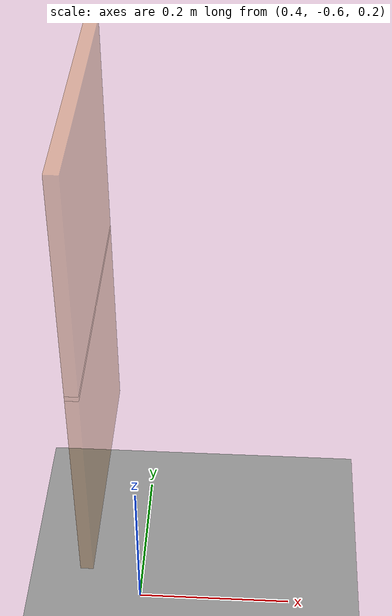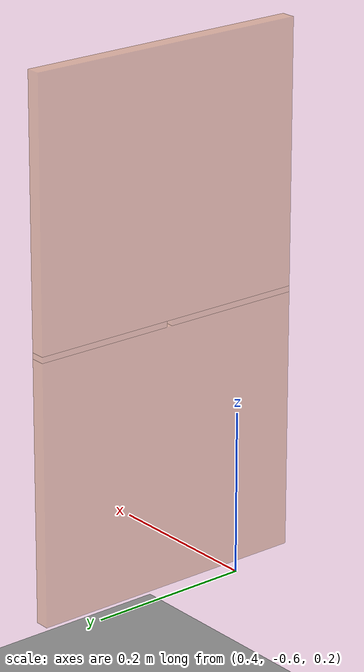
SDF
<?xml version="1.0"?>
<sdf version="1.8">
  <world name="hole_search">
    <physics name="fast_contact" type="ignored">
      <max_step_size>0.001</max_step_size>
      <real_time_factor>1.0</real_time_factor>
    </physics>

    <plugin filename="ignition-gazebo-physics-system"
            name="ignition::gazebo::systems::Physics"/>
    <plugin filename="ignition-gazebo-user-commands-system"
            name="ignition::gazebo::systems::UserCommands"/>
    <plugin filename="ignition-gazebo-scene-broadcaster-system"
            name="ignition::gazebo::systems::SceneBroadcaster"/>
    <plugin filename="ignition-gazebo-contact-system"
            name="ignition::gazebo::systems::Contact"/>

    <!-- 零重力让力矩控制器复位可重复；惯量和控制动力学仍然启用。 -->
    <gravity>0 0 0</gravity>

    <light type="directional" name="sun">
      <cast_shadows>true</cast_shadows>
      <pose>0 0 10 0 0 0</pose>
      <diffuse>0.8 0.8 0.8 1</diffuse>
      <specular>0.2 0.2 0.2 1</specular>
      <direction>-0.4 0.2 -1</direction>
    </light>

    <model name="ground">
      <static>true</static>
      <link name="link">
        <collision name="collision">
          <geometry><box><size>3 3 0.02</size></box></geometry>
        </collision>
        <visual name="visual">
          <geometry><box><size>3 3 0.02</size></box></geometry>
          <material><diffuse>0.55 0.55 0.55 1</diffuse></material>
        </visual>
      </link>
    </model>

    <!-- 初始固定板：外边界 Y=340 mm、Z=620 mm，厚度/孔深 X=17 mm。
         四块实体直接围成 7 mm × 7 mm 方孔，没有黑色标记和移动补片。
         每个 Episode 运行控制器会删除此模型，并在完全相同的固定外边界
         内按随机孔坐标重新计算四块实体后生成新的 hole_fixture。 -->
    <model name="hole_fixture">
      <static>true</static>
      <pose>0.33220 -0.43800 0.57242 0 0 0</pose>
      <link name="fixture">
        <collision name="top">
          <pose>0 0 0.15675 0 0 0</pose>
          <geometry><box><size>0.017 0.34 0.3065</size></box></geometry>
        </collision>
        <visual name="top_visual">
          <pose>0 0 0.15675 0 0 0</pose>
          <geometry><box><size>0.017 0.34 0.3065</size></box></geometry>
          <transparency>0.65</transparency>
          <material><diffuse>0.75 0.45 0.15 0.35</diffuse></material>
        </visual>

        <collision name="bottom">
          <pose>0 0 -0.15675 0 0 0</pose>
          <geometry><box><size>0.017 0.34 0.3065</size></box></geometry>
        </collision>
        <visual name="bottom_visual">
          <pose>0 0 -0.15675 0 0 0</pose>
          <geometry><box><size>0.017 0.34 0.3065</size></box></geometry>
          <transparency>0.65</transparency>
          <material><diffuse>0.75 0.45 0.15 0.35</diffuse></material>
        </visual>

        <collision name="left">
          <pose>0 0.08675 0 0 0 0</pose>
          <geometry><box><size>0.017 0.1665 0.007</size></box></geometry>
        </collision>
        <visual name="left_visual">
          <pose>0 0.08675 0 0 0 0</pose>
          <geometry><box><size>0.017 0.1665 0.007</size></box></geometry>
          <transparency>0.65</transparency>
          <material><diffuse>0.75 0.45 0.15 0.35</diffuse></material>
        </visual>

        <collision name="right">
          <pose>0 -0.08675 0 0 0 0</pose>
          <geometry><box><size>0.017 0.1665 0.007</size></box></geometry>
        </collision>
        <visual name="right_visual">
          <pose>0 -0.08675 0 0 0 0</pose>
          <geometry><box><size>0.017 0.1665 0.007</size></box></geometry>
          <transparency>0.65</transparency>
          <material><diffuse>0.75 0.45 0.15 0.35</diffuse></material>
        </visual>
      </link>
    </model>
  </world>
</sdf>
